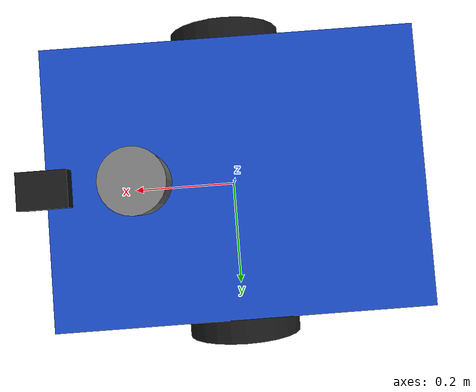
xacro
<?xml version="1.0"?>

<robot name="custom_amr" xmlns:xacro="http://www.ros.org/wiki/xacro">

  <!-- MATERIALS -->

  <material name="blue">
    <color rgba="0.1 0.3 0.8 1"/>
  </material>

  <material name="black">
    <color rgba="0.1 0.1 0.1 1"/>
  </material>

  <material name="gray">
    <color rgba="0.5 0.5 0.5 1"/>
  </material>

  <!-- BASE LINK -->

  <link name="base_link">

    <visual>
      <origin xyz="0 0 0.15"/>
      <geometry>
        <box size="0.6 0.45 0.20"/>
      </geometry>

      <material name="blue"/>
    </visual>

    <collision>
      <origin xyz="0 0 0.15"/>

      <geometry>
        <box size="0.6 0.45 0.20"/>
      </geometry>
    </collision>

    <inertial>
      <origin xyz="0 0 0.15"/>

      <mass value="10.0"/>

      <inertia
        ixx="0.2"
        ixy="0.0"
        ixz="0.0"
        iyy="0.3"
        iyz="0.0"
        izz="0.4"/>
    </inertial>

  </link>

  <!-- LEFT WHEEL -->

  <link name="left_wheel_link">

    <visual>
      <origin xyz="0 0 0" rpy="1.5708 0 0"/>

      <geometry>
        <cylinder radius="0.10" length="0.05"/>
      </geometry>

      <material name="black"/>
    </visual>

    <collision>
      <origin xyz="0 0 0" rpy="1.5708 0 0"/>

      <geometry>
        <cylinder radius="0.10" length="0.05"/>
      </geometry>
    </collision>

    <inertial>
      <mass value="1.0"/>

      <inertia
        ixx="0.01"
        ixy="0.0"
        ixz="0.0"
        iyy="0.01"
        iyz="0.0"
        izz="0.01"/>
    </inertial>

  </link>

  <joint name="left_wheel_joint" type="continuous">

    <parent link="base_link"/>

    <child link="left_wheel_link"/>

    <origin xyz="0 0.25 0.10" rpy="0 0 0"/>

    <axis xyz="0 1 0"/>

  </joint>

  <!-- RIGHT WHEEL -->

  <link name="right_wheel_link">

    <visual>
      <origin xyz="0 0 0" rpy="1.5708 0 0"/>

      <geometry>
        <cylinder radius="0.10" length="0.05"/>
      </geometry>

      <material name="black"/>
    </visual>

    <collision>
      <origin xyz="0 0 0" rpy="1.5708 0 0"/>

      <geometry>
        <cylinder radius="0.10" length="0.05"/>
      </geometry>
    </collision>

    <inertial>
      <mass value="1.0"/>

      <inertia
        ixx="0.01"
        ixy="0.0"
        ixz="0.0"
        iyy="0.01"
        iyz="0.0"
        izz="0.01"/>
    </inertial>

  </link>

  <joint name="right_wheel_joint" type="continuous">

    <parent link="base_link"/>

    <child link="right_wheel_link"/>

    <origin xyz="0 -0.25 0.10" rpy="0 0 0"/>

    <axis xyz="0 1 0"/>

  </joint>

  <!-- CASTER -->

  <link name="caster_link">

    <visual>

      <origin xyz="0 0 0"/>

      <geometry>
        <sphere radius="0.06"/>
      </geometry>

      <material name="gray"/>

    </visual>

    <collision>

      <origin xyz="0 0 0"/>

      <geometry>
        <sphere radius="0.06"/>
      </geometry>

    </collision>

    <inertial>

      <mass value="0.5"/>

      <inertia
        ixx="0.001"
        ixy="0"
        ixz="0"
        iyy="0.001"
        iyz="0"
        izz="0.001"/>

    </inertial>

  </link>

  <joint name="caster_joint" type="fixed">

    <parent link="base_link"/>

    <child link="caster_link"/>

    <origin xyz="-0.25 0 0.05"/>

  </joint>
  <!-- 2D LIDAR -->

  <link name="laser_link">

    <visual>
      <geometry>
        <cylinder radius="0.05" length="0.08"/>
      </geometry>

      <material name="gray"/>
    </visual>

    <collision>
      <geometry>
        <cylinder radius="0.05" length="0.08"/>
      </geometry>
    </collision>

    <inertial>
      <mass value="0.1"/>

      <inertia
        ixx="0.0001"
        ixy="0.0"
        ixz="0.0"
        iyy="0.0001"
        iyz="0.0"
        izz="0.0001"/>
    </inertial>

  </link>

  <joint name="laser_joint" type="fixed">

    <parent link="base_link"/>
    <child link="laser_link"/>

    <!-- Mounted on top/front of robot -->
    <origin xyz="0.15 0 0.30" rpy="0 0 0"/>

  </joint>
  <!-- RGB CAMERA -->

  <link name="camera_link">

    <visual>
      <geometry>
        <box size="0.08 0.06 0.05"/>
      </geometry>

      <material name="black"/>
    </visual>

    <collision>
      <geometry>
        <box size="0.08 0.06 0.05"/>
      </geometry>
    </collision>

    <inertial>
      <mass value="0.05"/>

      <inertia
        ixx="0.00001"
        ixy="0.0"
        ixz="0.0"
        iyy="0.00001"
        iyz="0.0"
        izz="0.00001"/>
    </inertial>

  </link>

  <joint name="camera_joint" type="fixed">

    <parent link="base_link"/>
    <child link="camera_link"/>

    <!-- Front-facing camera -->
    <origin xyz="0.30 0 0.25" rpy="0 0 0"/>

  </joint>

  <!-- CAMERA OPTICAL FRAME -->
  <link name="camera_optical_link"/>

  <joint name="camera_optical_joint" type="fixed">
    <parent link="camera_link"/>
    <child link="camera_optical_link"/>
    <origin xyz="0 0 0" rpy="-1.5708 0 -1.5708"/>
  </joint>

<!-- GAZEBO RGB CAMERA SENSOR -->

<gazebo reference="camera_link">

  <sensor type="camera" name="camera1">

    <always_on>true</always_on>
    <update_rate>15.0</update_rate>
    <visualize>false</visualize>

    <camera name="head">

      <horizontal_fov>1.047</horizontal_fov>

      <image>
        <width>640</width>
        <height>480</height>
        <format>R8G8B8</format>
      </image>

      <clip>
        <near>0.1</near>
        <far>20.0</far>
      </clip>

    </camera>

   <plugin
  name="camera_controller"
  filename="libgazebo_ros_camera.so">

  <ros>
    <namespace>/</namespace>
    <remapping>image_raw:=camera/image_raw</remapping>
    <remapping>camera_info:=camera/camera_info</remapping>
  </ros>

  <!-- frame_name now points at the optical frame added above -->
  <frame_name>camera_optical_link</frame_name>

</plugin>

  </sensor>

</gazebo>
  <!-- GAZEBO RAY SENSOR -->

  <gazebo reference="laser_link">

    <sensor name="laser_sensor" type="ray">

      <always_on>true</always_on>
      <visualize>true</visualize>
      <update_rate>10.0</update_rate>

      <ray>

        <scan>

          <horizontal>
            <samples>360</samples>
            <resolution>1</resolution>
            <min_angle>-3.14159</min_angle>
            <max_angle>3.14159</max_angle>
          </horizontal>

        </scan>

        <range>
          <min>0.12</min>
          <max>10.0</max>
          <resolution>0.01</resolution>
        </range>

      </ray>

      <plugin
        name="gazebo_ros_ray_sensor"
        filename="libgazebo_ros_ray_sensor.so">

        <ros>
          <namespace>/</namespace>
          <remapping>~/out:=scan</remapping>
        </ros>

        <output_type>sensor_msgs/LaserScan</output_type>

        <frame_name>laser_link</frame_name>

      </plugin>

    </sensor>

  </gazebo>
  <!-- GAZEBO PHYSICS -->

  <gazebo reference="base_link">
    <material>Gazebo/Blue</material>
  </gazebo>

  <gazebo reference="left_wheel_link">
    <material>Gazebo/Black</material>
    <mu1>1.0</mu1>
    <mu2>1.0</mu2>
  </gazebo>

  <gazebo reference="right_wheel_link">
    <material>Gazebo/Black</material>
    <mu1>1.0</mu1>
    <mu2>1.0</mu2>
  </gazebo>

  <gazebo reference="caster_link">
    <material>Gazebo/Grey</material>
    <mu1>0.5</mu1>
    <mu2>0.5</mu2>
  </gazebo>

  <!-- DIFFERENTIAL DRIVE PLUGIN -->

  <gazebo>

    <plugin
      name="differential_drive_controller"
      filename="libgazebo_ros_diff_drive.so">

      <ros>
        <namespace>/</namespace>
      </ros>

      <!-- Wheel joints -->
      <left_joint>left_wheel_joint</left_joint>
      <right_joint>right_wheel_joint</right_joint>

      <!-- Robot geometry -->
      <wheel_separation>0.50</wheel_separation>
      <wheel_diameter>0.20</wheel_diameter>

      <!-- Limits -->
      <max_wheel_torque>20.0</max_wheel_torque>
      <max_wheel_acceleration>5.0</max_wheel_acceleration>

      <!-- Odometry -->

      <publish_odom>true</publish_odom>
      <publish_odom_tf>true</publish_odom_tf>
      <publish_wheel_tf>true</publish_wheel_tf>

      <!-- Frames -->
      <odometry_frame>odom</odometry_frame>
      <robot_base_frame>base_link</robot_base_frame>

      <!-- Topics -->
      <command_topic>cmd_vel</command_topic>
      <odometry_topic>odom</odometry_topic>

    </plugin>
  </gazebo>

</robot>
